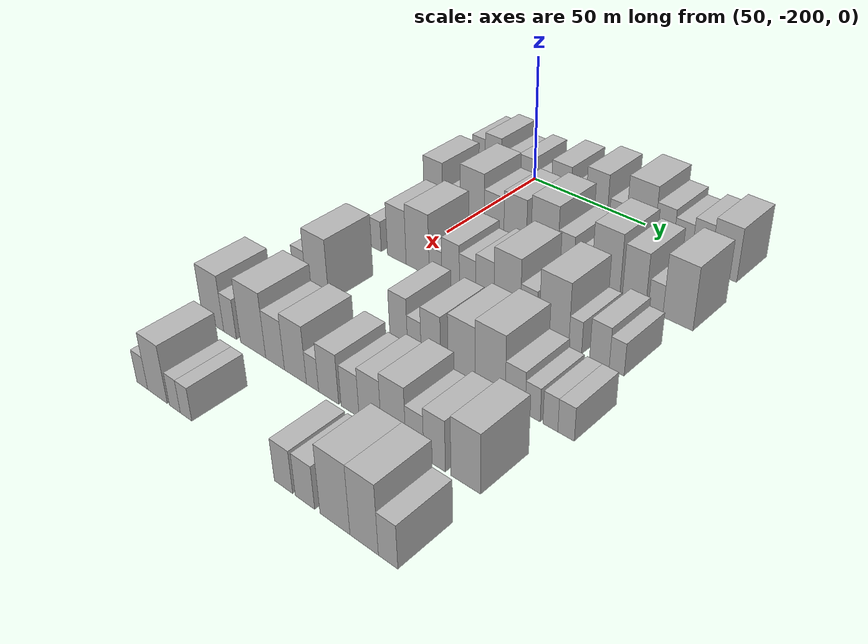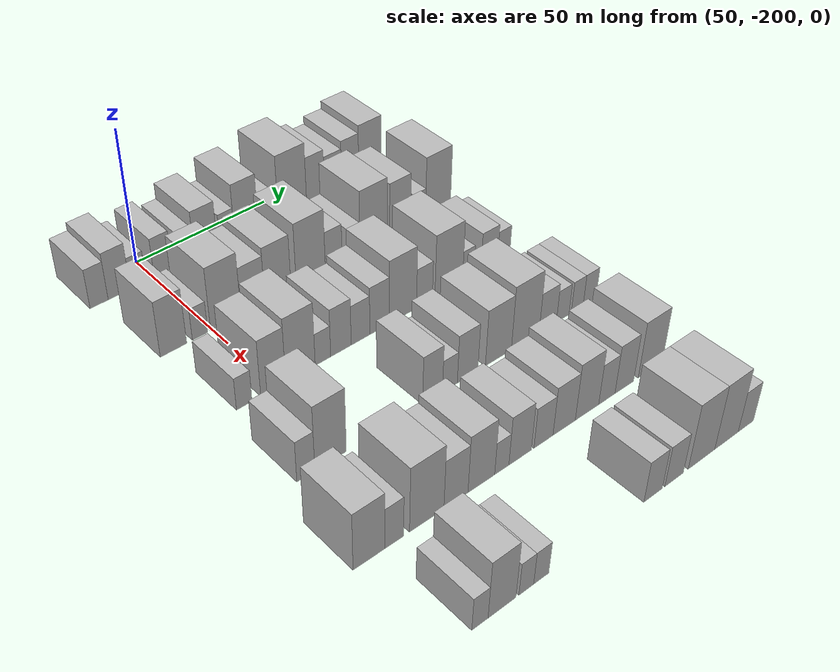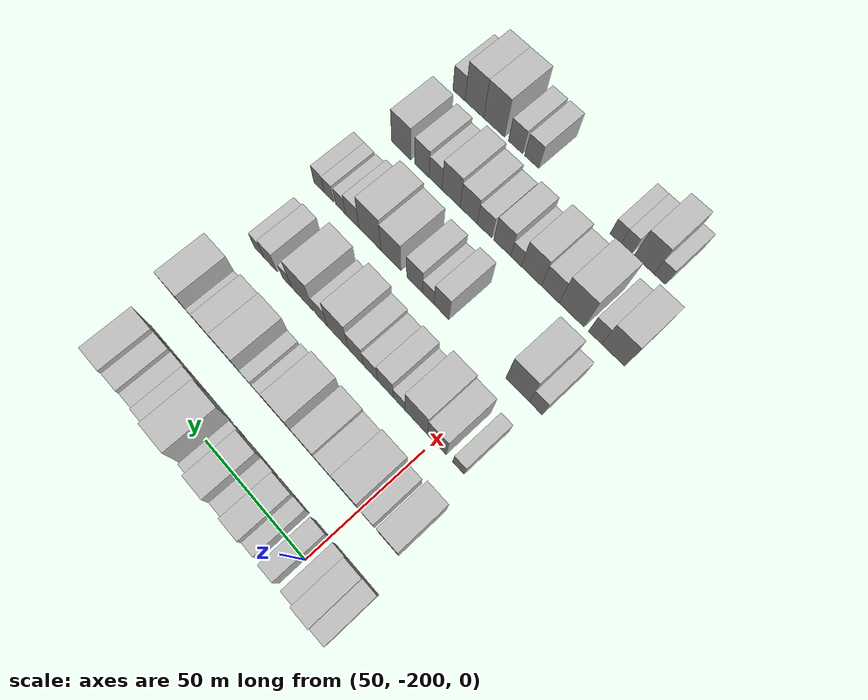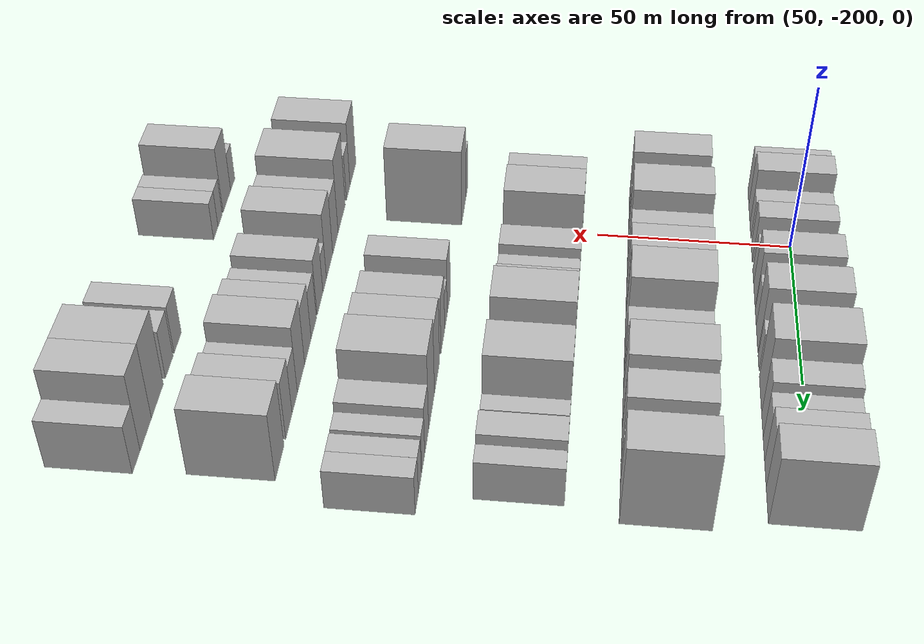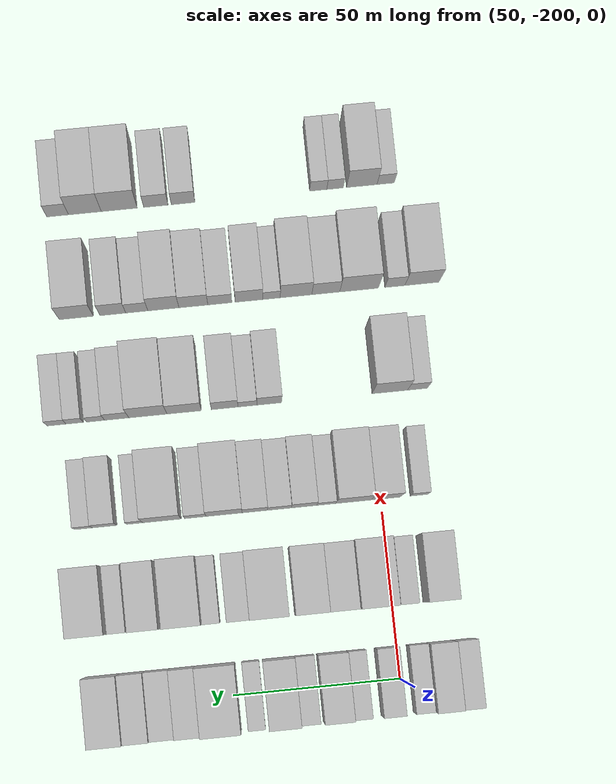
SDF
<sdf version="1.6">
 <world name="default">
  <model name="building_39">
   <static>1</static>
   <pose>50.0000 -219.6651 0 0.000000 0.000000 0.000000</pose>
   <link name="link">
    <pose>0 0 7.50 0 0 0</pose>
    <collision name="collision"><geometry><box><size>20.0000 6.3704 15.0000</size></box></geometry></collision>
    <visual name="visual">
     <cast_shadows>0</cast_shadows>
     <geometry><box><size>20.0000 6.3704 15.0000</size></box></geometry>
     <material>
      <script>
       <uri>model://HANNAS_wall/materials/scripts</uri>
       <uri>model://HANNAS_wall/materials/textures</uri>
       <name>vrc/HANNAS_wall</name>
      </script>
     </material>
    </visual>
   </link>
  </model>
  <model name="building_40">
   <static>1</static>
   <pose>50.0000 -212.5192 0 0.000000 0.000000 0.000000</pose>
   <link name="link">
    <pose>0 0 9.00 0 0 0</pose>
    <collision name="collision"><geometry><box><size>20.0000 7.9213 18.0000</size></box></geometry></collision>
    <visual name="visual">
     <cast_shadows>0</cast_shadows>
     <geometry><box><size>20.0000 7.9213 18.0000</size></box></geometry>
     <material>
      <script>
       <uri>model://HANNAS_wall/materials/scripts</uri>
       <uri>model://HANNAS_wall/materials/textures</uri>
       <name>vrc/HANNAS_wall</name>
      </script>
     </material>
    </visual>
   </link>
  </model>
  <model name="building_41">
   <static>1</static>
   <pose>50.0000 -205.6882 0 0.000000 0.000000 0.000000</pose>
   <link name="link">
    <pose>0 0 6.00 0 0 0</pose>
    <collision name="collision"><geometry><box><size>20.0000 5.7407 12.0000</size></box></geometry></collision>
    <visual name="visual">
     <cast_shadows>0</cast_shadows>
     <geometry><box><size>20.0000 5.7407 12.0000</size></box></geometry>
     <material>
      <script>
       <uri>model://HANNAS_wall/materials/scripts</uri>
       <uri>model://HANNAS_wall/materials/textures</uri>
       <name>vrc/HANNAS_wall</name>
      </script>
     </material>
    </visual>
   </link>
  </model>
  <model name="building_42">
   <static>1</static>
   <pose>50.0000 -196.4904 0 0.000000 0.000000 0.000000</pose>
   <link name="link">
    <pose>0 0 7.50 0 0 0</pose>
    <collision name="collision"><geometry><box><size>20.0000 6.6550 15.0000</size></box></geometry></collision>
    <visual name="visual">
     <cast_shadows>0</cast_shadows>
     <geometry><box><size>20.0000 6.6550 15.0000</size></box></geometry>
     <material>
      <script>
       <uri>model://HANNAS_wall/materials/scripts</uri>
       <uri>model://HANNAS_wall/materials/textures</uri>
       <name>vrc/HANNAS_wall</name>
      </script>
     </material>
    </visual>
   </link>
  </model>
  <model name="building_43">
   <static>1</static>
   <pose>50.0000 -187.4325 0 0.000000 0.000000 0.000000</pose>
   <link name="link">
    <pose>0 0 6.00 0 0 0</pose>
    <collision name="collision"><geometry><box><size>20.0000 5.4609 12.0000</size></box></geometry></collision>
    <visual name="visual">
     <cast_shadows>0</cast_shadows>
     <geometry><box><size>20.0000 5.4609 12.0000</size></box></geometry>
     <material>
      <script>
       <uri>model://HANNAS_wall/materials/scripts</uri>
       <uri>model://HANNAS_wall/materials/textures</uri>
       <name>vrc/HANNAS_wall</name>
      </script>
     </material>
    </visual>
   </link>
  </model>
  <model name="building_44">
   <static>1</static>
   <pose>50.0000 -180.2885 0 0.000000 0.000000 0.000000</pose>
   <link name="link">
    <pose>0 0 9.00 0 0 0</pose>
    <collision name="collision"><geometry><box><size>20.0000 8.8270 18.0000</size></box></geometry></collision>
    <visual name="visual">
     <cast_shadows>0</cast_shadows>
     <geometry><box><size>20.0000 8.8270 18.0000</size></box></geometry>
     <material>
      <script>
       <uri>model://HANNAS_wall/materials/scripts</uri>
       <uri>model://HANNAS_wall/materials/textures</uri>
       <name>vrc/HANNAS_wall</name>
      </script>
     </material>
    </visual>
   </link>
  </model>
  <model name="building_45">
   <static>1</static>
   <pose>50.0000 -171.9831 0 0.000000 0.000000 0.000000</pose>
   <link name="link">
    <pose>0 0 6.00 0 0 0</pose>
    <collision name="collision"><geometry><box><size>20.0000 5.7838 12.0000</size></box></geometry></collision>
    <visual name="visual">
     <cast_shadows>0</cast_shadows>
     <geometry><box><size>20.0000 5.7838 12.0000</size></box></geometry>
     <material>
      <script>
       <uri>model://HANNAS_wall/materials/scripts</uri>
       <uri>model://HANNAS_wall/materials/textures</uri>
       <name>vrc/HANNAS_wall</name>
      </script>
     </material>
    </visual>
   </link>
  </model>
  <model name="building_46">
   <static>1</static>
   <pose>50.0000 -164.3789 0 0.000000 0.000000 0.000000</pose>
   <link name="link">
    <pose>0 0 10.50 0 0 0</pose>
    <collision name="collision"><geometry><box><size>20.0000 9.4247 21.0000</size></box></geometry></collision>
    <visual name="visual">
     <cast_shadows>0</cast_shadows>
     <geometry><box><size>20.0000 9.4247 21.0000</size></box></geometry>
     <material>
      <script>
       <uri>model://HANNAS_wall/materials/scripts</uri>
       <uri>model://HANNAS_wall/materials/textures</uri>
       <name>vrc/HANNAS_wall</name>
      </script>
     </material>
    </visual>
   </link>
  </model>
  <model name="building_47">
   <static>1</static>
   <pose>50.0000 -156.1041 0 0.000000 0.000000 0.000000</pose>
   <link name="link">
    <pose>0 0 6.00 0 0 0</pose>
    <collision name="collision"><geometry><box><size>20.0000 5.1247 12.0000</size></box></geometry></collision>
    <visual name="visual">
     <cast_shadows>0</cast_shadows>
     <geometry><box><size>20.0000 5.1247 12.0000</size></box></geometry>
     <material>
      <script>
       <uri>model://HANNAS_wall/materials/scripts</uri>
       <uri>model://HANNAS_wall/materials/textures</uri>
       <name>vrc/HANNAS_wall</name>
      </script>
     </material>
    </visual>
   </link>
  </model>
  <model name="building_48">
   <static>1</static>
   <pose>50.0000 -145.6208 0 0.000000 0.000000 0.000000</pose>
   <link name="link">
    <pose>0 0 12.00 0 0 0</pose>
    <collision name="collision"><geometry><box><size>20.0000 11.8420 24.0000</size></box></geometry></collision>
    <visual name="visual">
     <cast_shadows>0</cast_shadows>
     <geometry><box><size>20.0000 11.8420 24.0000</size></box></geometry>
     <material>
      <script>
       <uri>model://HANNAS_wall/materials/scripts</uri>
       <uri>model://HANNAS_wall/materials/textures</uri>
       <name>vrc/HANNAS_wall</name>
      </script>
     </material>
    </visual>
   </link>
  </model>
  <model name="building_49">
   <static>1</static>
   <pose>50.0000 -135.8851 0 0.000000 0.000000 0.000000</pose>
   <link name="link">
    <pose>0 0 9.00 0 0 0</pose>
    <collision name="collision"><geometry><box><size>20.0000 7.6292 18.0000</size></box></geometry></collision>
    <visual name="visual">
     <cast_shadows>0</cast_shadows>
     <geometry><box><size>20.0000 7.6292 18.0000</size></box></geometry>
     <material>
      <script>
       <uri>model://HANNAS_wall/materials/scripts</uri>
       <uri>model://HANNAS_wall/materials/textures</uri>
       <name>vrc/HANNAS_wall</name>
      </script>
     </material>
    </visual>
   </link>
  </model>
  <model name="building_50">
   <static>1</static>
   <pose>50.0000 -128.3666 0 0.000000 0.000000 0.000000</pose>
   <link name="link">
    <pose>0 0 7.50 0 0 0</pose>
    <collision name="collision"><geometry><box><size>20.0000 7.4078 15.0000</size></box></geometry></collision>
    <visual name="visual">
     <cast_shadows>0</cast_shadows>
     <geometry><box><size>20.0000 7.4078 15.0000</size></box></geometry>
     <material>
      <script>
       <uri>model://HANNAS_wall/materials/scripts</uri>
       <uri>model://HANNAS_wall/materials/textures</uri>
       <name>vrc/HANNAS_wall</name>
      </script>
     </material>
    </visual>
   </link>
  </model>
  <model name="building_51">
   <static>1</static>
   <pose>50.0000 -120.8932 0 0.000000 0.000000 0.000000</pose>
   <link name="link">
    <pose>0 0 9.00 0 0 0</pose>
    <collision name="collision"><geometry><box><size>20.0000 7.5390 18.0000</size></box></geometry></collision>
    <visual name="visual">
     <cast_shadows>0</cast_shadows>
     <geometry><box><size>20.0000 7.5390 18.0000</size></box></geometry>
     <material>
      <script>
       <uri>model://HANNAS_wall/materials/scripts</uri>
       <uri>model://HANNAS_wall/materials/textures</uri>
       <name>vrc/HANNAS_wall</name>
      </script>
     </material>
    </visual>
   </link>
  </model>
  <model name="building_52">
   <static>1</static>
   <pose>50.0000 -112.0678 0 0.000000 0.000000 0.000000</pose>
   <link name="link">
    <pose>0 0 10.50 0 0 0</pose>
    <collision name="collision"><geometry><box><size>20.0000 10.1117 21.0000</size></box></geometry></collision>
    <visual name="visual">
     <cast_shadows>0</cast_shadows>
     <geometry><box><size>20.0000 10.1117 21.0000</size></box></geometry>
     <material>
      <script>
       <uri>model://HANNAS_wall/materials/scripts</uri>
       <uri>model://HANNAS_wall/materials/textures</uri>
       <name>vrc/HANNAS_wall</name>
      </script>
     </material>
    </visual>
   </link>
  </model>
  <model name="building_163">
   <static>1</static>
   <pose>82.0000 -213.8480 0 0.000000 0.000000 0.000000</pose>
   <link name="link">
    <pose>0 0 10.50 0 0 0</pose>
    <collision name="collision"><geometry><box><size>20.0000 9.2353 21.0000</size></box></geometry></collision>
    <visual name="visual">
     <cast_shadows>0</cast_shadows>
     <geometry><box><size>20.0000 9.2353 21.0000</size></box></geometry>
     <material>
      <script>
       <uri>model://HANNAS_wall/materials/scripts</uri>
       <uri>model://HANNAS_wall/materials/textures</uri>
       <name>vrc/HANNAS_wall</name>
      </script>
     </material>
    </visual>
   </link>
  </model>
  <model name="building_164">
   <static>1</static>
   <pose>82.0000 -204.4668 0 0.000000 0.000000 0.000000</pose>
   <link name="link">
    <pose>0 0 6.00 0 0 0</pose>
    <collision name="collision"><geometry><box><size>20.0000 5.5270 12.0000</size></box></geometry></collision>
    <visual name="visual">
     <cast_shadows>0</cast_shadows>
     <geometry><box><size>20.0000 5.5270 12.0000</size></box></geometry>
     <material>
      <script>
       <uri>model://HANNAS_wall/materials/scripts</uri>
       <uri>model://HANNAS_wall/materials/textures</uri>
       <name>vrc/HANNAS_wall</name>
      </script>
     </material>
    </visual>
   </link>
  </model>
  <model name="building_165">
   <static>1</static>
   <pose>82.0000 -195.1343 0 0.000000 0.000000 0.000000</pose>
   <link name="link">
    <pose>0 0 12.00 0 0 0</pose>
    <collision name="collision"><geometry><box><size>20.0000 11.1380 24.0000</size></box></geometry></collision>
    <visual name="visual">
     <cast_shadows>0</cast_shadows>
     <geometry><box><size>20.0000 11.1380 24.0000</size></box></geometry>
     <material>
      <script>
       <uri>model://HANNAS_wall/materials/scripts</uri>
       <uri>model://HANNAS_wall/materials/textures</uri>
       <name>vrc/HANNAS_wall</name>
      </script>
     </material>
    </visual>
   </link>
  </model>
  <model name="building_166">
   <static>1</static>
   <pose>82.0000 -185.1039 0 0.000000 0.000000 0.000000</pose>
   <link name="link">
    <pose>0 0 9.00 0 0 0</pose>
    <collision name="collision"><geometry><box><size>20.0000 8.9227 18.0000</size></box></geometry></collision>
    <visual name="visual">
     <cast_shadows>0</cast_shadows>
     <geometry><box><size>20.0000 8.9227 18.0000</size></box></geometry>
     <material>
      <script>
       <uri>model://HANNAS_wall/materials/scripts</uri>
       <uri>model://HANNAS_wall/materials/textures</uri>
       <name>vrc/HANNAS_wall</name>
      </script>
     </material>
    </visual>
   </link>
  </model>
  <model name="building_167">
   <static>1</static>
   <pose>82.0000 -175.6347 0 0.000000 0.000000 0.000000</pose>
   <link name="link">
    <pose>0 0 10.50 0 0 0</pose>
    <collision name="collision"><geometry><box><size>20.0000 10.0158 21.0000</size></box></geometry></collision>
    <visual name="visual">
     <cast_shadows>0</cast_shadows>
     <geometry><box><size>20.0000 10.0158 21.0000</size></box></geometry>
     <material>
      <script>
       <uri>model://HANNAS_wall/materials/scripts</uri>
       <uri>model://HANNAS_wall/materials/textures</uri>
       <name>vrc/HANNAS_wall</name>
      </script>
     </material>
    </visual>
   </link>
  </model>
  <model name="building_168">
   <static>1</static>
   <pose>82.0000 -162.8648 0 0.000000 0.000000 0.000000</pose>
   <link name="link">
    <pose>0 0 12.00 0 0 0</pose>
    <collision name="collision"><geometry><box><size>20.0000 11.5240 24.0000</size></box></geometry></collision>
    <visual name="visual">
     <cast_shadows>0</cast_shadows>
     <geometry><box><size>20.0000 11.5240 24.0000</size></box></geometry>
     <material>
      <script>
       <uri>model://HANNAS_wall/materials/scripts</uri>
       <uri>model://HANNAS_wall/materials/textures</uri>
       <name>vrc/HANNAS_wall</name>
      </script>
     </material>
    </visual>
   </link>
  </model>
  <model name="building_169">
   <static>1</static>
   <pose>82.0000 -153.7207 0 0.000000 0.000000 0.000000</pose>
   <link name="link">
    <pose>0 0 7.50 0 0 0</pose>
    <collision name="collision"><geometry><box><size>20.0000 6.7641 15.0000</size></box></geometry></collision>
    <visual name="visual">
     <cast_shadows>0</cast_shadows>
     <geometry><box><size>20.0000 6.7641 15.0000</size></box></geometry>
     <material>
      <script>
       <uri>model://HANNAS_wall/materials/scripts</uri>
       <uri>model://HANNAS_wall/materials/textures</uri>
       <name>vrc/HANNAS_wall</name>
      </script>
     </material>
    </visual>
   </link>
  </model>
  <model name="building_170">
   <static>1</static>
   <pose>82.0000 -145.6865 0 0.000000 0.000000 0.000000</pose>
   <link name="link">
    <pose>0 0 6.00 0 0 0</pose>
    <collision name="collision"><geometry><box><size>20.0000 5.3043 12.0000</size></box></geometry></collision>
    <visual name="visual">
     <cast_shadows>0</cast_shadows>
     <geometry><box><size>20.0000 5.3043 12.0000</size></box></geometry>
     <material>
      <script>
       <uri>model://HANNAS_wall/materials/scripts</uri>
       <uri>model://HANNAS_wall/materials/textures</uri>
       <name>vrc/HANNAS_wall</name>
      </script>
     </material>
    </visual>
   </link>
  </model>
  <model name="building_171">
   <static>1</static>
   <pose>82.0000 -137.3369 0 0.000000 0.000000 0.000000</pose>
   <link name="link">
    <pose>0 0 12.00 0 0 0</pose>
    <collision name="collision"><geometry><box><size>20.0000 11.3950 24.0000</size></box></geometry></collision>
    <visual name="visual">
     <cast_shadows>0</cast_shadows>
     <geometry><box><size>20.0000 11.3950 24.0000</size></box></geometry>
     <material>
      <script>
       <uri>model://HANNAS_wall/materials/scripts</uri>
       <uri>model://HANNAS_wall/materials/textures</uri>
       <name>vrc/HANNAS_wall</name>
      </script>
     </material>
    </visual>
   </link>
  </model>
  <model name="building_172">
   <static>1</static>
   <pose>82.0000 -126.1209 0 0.000000 0.000000 0.000000</pose>
   <link name="link">
    <pose>0 0 10.50 0 0 0</pose>
    <collision name="collision"><geometry><box><size>20.0000 9.0370 21.0000</size></box></geometry></collision>
    <visual name="visual">
     <cast_shadows>0</cast_shadows>
     <geometry><box><size>20.0000 9.0370 21.0000</size></box></geometry>
     <material>
      <script>
       <uri>model://HANNAS_wall/materials/scripts</uri>
       <uri>model://HANNAS_wall/materials/textures</uri>
       <name>vrc/HANNAS_wall</name>
      </script>
     </material>
    </visual>
   </link>
  </model>
  <model name="building_173">
   <static>1</static>
   <pose>82.0000 -117.8494 0 0.000000 0.000000 0.000000</pose>
   <link name="link">
    <pose>0 0 6.00 0 0 0</pose>
    <collision name="collision"><geometry><box><size>20.0000 5.5059 12.0000</size></box></geometry></collision>
    <visual name="visual">
     <cast_shadows>0</cast_shadows>
     <geometry><box><size>20.0000 5.5059 12.0000</size></box></geometry>
     <material>
      <script>
       <uri>model://HANNAS_wall/materials/scripts</uri>
       <uri>model://HANNAS_wall/materials/textures</uri>
       <name>vrc/HANNAS_wall</name>
      </script>
     </material>
    </visual>
   </link>
  </model>
  <model name="building_174">
   <static>1</static>
   <pose>82.0000 -109.5113 0 0.000000 0.000000 0.000000</pose>
   <link name="link">
    <pose>0 0 12.00 0 0 0</pose>
    <collision name="collision"><geometry><box><size>20.0000 11.1703 24.0000</size></box></geometry></collision>
    <visual name="visual">
     <cast_shadows>0</cast_shadows>
     <geometry><box><size>20.0000 11.1703 24.0000</size></box></geometry>
     <material>
      <script>
       <uri>model://HANNAS_wall/materials/scripts</uri>
       <uri>model://HANNAS_wall/materials/textures</uri>
       <name>vrc/HANNAS_wall</name>
      </script>
     </material>
    </visual>
   </link>
  </model>
  <model name="building_277">
   <static>1</static>
   <pose>114.0000 -211.4672 0 0.000000 0.000000 0.000000</pose>
   <link name="link">
    <pose>0 0 6.00 0 0 0</pose>
    <collision name="collision"><geometry><box><size>20.0000 5.3810 12.0000</size></box></geometry></collision>
    <visual name="visual">
     <cast_shadows>0</cast_shadows>
     <geometry><box><size>20.0000 5.3810 12.0000</size></box></geometry>
     <material>
      <script>
       <uri>model://HANNAS_wall/materials/scripts</uri>
       <uri>model://HANNAS_wall/materials/textures</uri>
       <name>vrc/HANNAS_wall</name>
      </script>
     </material>
    </visual>
   </link>
  </model>
  <model name="building_278">
   <static>1</static>
   <pose>114.0000 -201.3523 0 0.000000 0.000000 0.000000</pose>
   <link name="link">
    <pose>0 0 10.50 0 0 0</pose>
    <collision name="collision"><geometry><box><size>20.0000 8.8488 21.0000</size></box></geometry></collision>
    <visual name="visual">
     <cast_shadows>0</cast_shadows>
     <geometry><box><size>20.0000 8.8488 21.0000</size></box></geometry>
     <material>
      <script>
       <uri>model://HANNAS_wall/materials/scripts</uri>
       <uri>model://HANNAS_wall/materials/textures</uri>
       <name>vrc/HANNAS_wall</name>
      </script>
     </material>
    </visual>
   </link>
  </model>
  <model name="building_279">
   <static>1</static>
   <pose>114.0000 -191.5979 0 0.000000 0.000000 0.000000</pose>
   <link name="link">
    <pose>0 0 12.00 0 0 0</pose>
    <collision name="collision"><geometry><box><size>20.0000 10.6601 24.0000</size></box></geometry></collision>
    <visual name="visual">
     <cast_shadows>0</cast_shadows>
     <geometry><box><size>20.0000 10.6601 24.0000</size></box></geometry>
     <material>
      <script>
       <uri>model://HANNAS_wall/materials/scripts</uri>
       <uri>model://HANNAS_wall/materials/textures</uri>
       <name>vrc/HANNAS_wall</name>
      </script>
     </material>
    </visual>
   </link>
  </model>
  <model name="building_280">
   <static>1</static>
   <pose>114.0000 -183.3990 0 0.000000 0.000000 0.000000</pose>
   <link name="link">
    <pose>0 0 6.00 0 0 0</pose>
    <collision name="collision"><geometry><box><size>20.0000 5.7376 12.0000</size></box></geometry></collision>
    <visual name="visual">
     <cast_shadows>0</cast_shadows>
     <geometry><box><size>20.0000 5.7376 12.0000</size></box></geometry>
     <material>
      <script>
       <uri>model://HANNAS_wall/materials/scripts</uri>
       <uri>model://HANNAS_wall/materials/textures</uri>
       <name>vrc/HANNAS_wall</name>
      </script>
     </material>
    </visual>
   </link>
  </model>
  <model name="building_281">
   <static>1</static>
   <pose>114.0000 -176.6752 0 0.000000 0.000000 0.000000</pose>
   <link name="link">
    <pose>0 0 9.00 0 0 0</pose>
    <collision name="collision"><geometry><box><size>20.0000 7.7099 18.0000</size></box></geometry></collision>
    <visual name="visual">
     <cast_shadows>0</cast_shadows>
     <geometry><box><size>20.0000 7.7099 18.0000</size></box></geometry>
     <material>
      <script>
       <uri>model://HANNAS_wall/materials/scripts</uri>
       <uri>model://HANNAS_wall/materials/textures</uri>
       <name>vrc/HANNAS_wall</name>
      </script>
     </material>
    </visual>
   </link>
  </model>
  <model name="building_282">
   <static>1</static>
   <pose>114.0000 -169.2463 0 0.000000 0.000000 0.000000</pose>
   <link name="link">
    <pose>0 0 7.50 0 0 0</pose>
    <collision name="collision"><geometry><box><size>20.0000 7.1480 15.0000</size></box></geometry></collision>
    <visual name="visual">
     <cast_shadows>0</cast_shadows>
     <geometry><box><size>20.0000 7.1480 15.0000</size></box></geometry>
     <material>
      <script>
       <uri>model://HANNAS_wall/materials/scripts</uri>
       <uri>model://HANNAS_wall/materials/textures</uri>
       <name>vrc/HANNAS_wall</name>
      </script>
     </material>
    </visual>
   </link>
  </model>
  <model name="building_283">
   <static>1</static>
   <pose>114.0000 -161.8572 0 0.000000 0.000000 0.000000</pose>
   <link name="link">
    <pose>0 0 9.00 0 0 0</pose>
    <collision name="collision"><geometry><box><size>20.0000 7.6302 18.0000</size></box></geometry></collision>
    <visual name="visual">
     <cast_shadows>0</cast_shadows>
     <geometry><box><size>20.0000 7.6302 18.0000</size></box></geometry>
     <material>
      <script>
       <uri>model://HANNAS_wall/materials/scripts</uri>
       <uri>model://HANNAS_wall/materials/textures</uri>
       <name>vrc/HANNAS_wall</name>
      </script>
     </material>
    </visual>
   </link>
  </model>
  <model name="building_284">
   <static>1</static>
   <pose>114.0000 -152.6305 0 0.000000 0.000000 0.000000</pose>
   <link name="link">
    <pose>0 0 12.00 0 0 0</pose>
    <collision name="collision"><geometry><box><size>20.0000 10.8233 24.0000</size></box></geometry></collision>
    <visual name="visual">
     <cast_shadows>0</cast_shadows>
     <geometry><box><size>20.0000 10.8233 24.0000</size></box></geometry>
     <material>
      <script>
       <uri>model://HANNAS_wall/materials/scripts</uri>
       <uri>model://HANNAS_wall/materials/textures</uri>
       <name>vrc/HANNAS_wall</name>
      </script>
     </material>
    </visual>
   </link>
  </model>
  <model name="building_285">
   <static>1</static>
   <pose>114.0000 -143.9713 0 0.000000 0.000000 0.000000</pose>
   <link name="link">
    <pose>0 0 7.50 0 0 0</pose>
    <collision name="collision"><geometry><box><size>20.0000 6.4950 15.0000</size></box></geometry></collision>
    <visual name="visual">
     <cast_shadows>0</cast_shadows>
     <geometry><box><size>20.0000 6.4950 15.0000</size></box></geometry>
     <material>
      <script>
       <uri>model://HANNAS_wall/materials/scripts</uri>
       <uri>model://HANNAS_wall/materials/textures</uri>
       <name>vrc/HANNAS_wall</name>
      </script>
     </material>
    </visual>
   </link>
  </model>
  <model name="building_286">
   <static>1</static>
   <pose>114.0000 -133.9460 0 0.000000 0.000000 0.000000</pose>
   <link name="link">
    <pose>0 0 12.00 0 0 0</pose>
    <collision name="collision"><geometry><box><size>20.0000 11.5556 24.0000</size></box></geometry></collision>
    <visual name="visual">
     <cast_shadows>0</cast_shadows>
     <geometry><box><size>20.0000 11.5556 24.0000</size></box></geometry>
     <material>
      <script>
       <uri>model://HANNAS_wall/materials/scripts</uri>
       <uri>model://HANNAS_wall/materials/textures</uri>
       <name>vrc/HANNAS_wall</name>
      </script>
     </material>
    </visual>
   </link>
  </model>
  <model name="building_287">
   <static>1</static>
   <pose>114.0000 -125.7355 0 0.000000 0.000000 0.000000</pose>
   <link name="link">
    <pose>0 0 6.00 0 0 0</pose>
    <collision name="collision"><geometry><box><size>20.0000 4.8654 12.0000</size></box></geometry></collision>
    <visual name="visual">
     <cast_shadows>0</cast_shadows>
     <geometry><box><size>20.0000 4.8654 12.0000</size></box></geometry>
     <material>
      <script>
       <uri>model://HANNAS_wall/materials/scripts</uri>
       <uri>model://HANNAS_wall/materials/textures</uri>
       <name>vrc/HANNAS_wall</name>
      </script>
     </material>
    </visual>
   </link>
  </model>
  <model name="building_288">
   <static>1</static>
   <pose>114.0000 -116.6939 0 0.000000 0.000000 0.000000</pose>
   <link name="link">
    <pose>0 0 7.50 0 0 0</pose>
    <collision name="collision"><geometry><box><size>20.0000 7.2179 15.0000</size></box></geometry></collision>
    <visual name="visual">
     <cast_shadows>0</cast_shadows>
     <geometry><box><size>20.0000 7.2179 15.0000</size></box></geometry>
     <material>
      <script>
       <uri>model://HANNAS_wall/materials/scripts</uri>
       <uri>model://HANNAS_wall/materials/textures</uri>
       <name>vrc/HANNAS_wall</name>
      </script>
     </material>
    </visual>
   </link>
  </model>
  <model name="building_289">
   <static>1</static>
   <pose>114.0000 -110.3824 0 0.000000 0.000000 0.000000</pose>
   <link name="link">
    <pose>0 0 6.00 0 0 0</pose>
    <collision name="collision"><geometry><box><size>20.0000 5.4051 12.0000</size></box></geometry></collision>
    <visual name="visual">
     <cast_shadows>0</cast_shadows>
     <geometry><box><size>20.0000 5.4051 12.0000</size></box></geometry>
     <material>
      <script>
       <uri>model://HANNAS_wall/materials/scripts</uri>
       <uri>model://HANNAS_wall/materials/textures</uri>
       <name>vrc/HANNAS_wall</name>
      </script>
     </material>
    </visual>
   </link>
  </model>
  <model name="building_399">
   <static>1</static>
   <pose>146.0000 -214.5047 0 0.000000 0.000000 0.000000</pose>
   <link name="link">
    <pose>0 0 7.50 0 0 0</pose>
    <collision name="collision"><geometry><box><size>20.0000 6.0392 15.0000</size></box></geometry></collision>
    <visual name="visual">
     <cast_shadows>0</cast_shadows>
     <geometry><box><size>20.0000 6.0392 15.0000</size></box></geometry>
     <material>
      <script>
       <uri>model://HANNAS_wall/materials/scripts</uri>
       <uri>model://HANNAS_wall/materials/textures</uri>
       <name>vrc/HANNAS_wall</name>
      </script>
     </material>
    </visual>
   </link>
  </model>
  <model name="building_400">
   <static>1</static>
   <pose>146.0000 -206.0844 0 0.000000 0.000000 0.000000</pose>
   <link name="link">
    <pose>0 0 12.00 0 0 0</pose>
    <collision name="collision"><geometry><box><size>20.0000 10.8015 24.0000</size></box></geometry></collision>
    <visual name="visual">
     <cast_shadows>0</cast_shadows>
     <geometry><box><size>20.0000 10.8015 24.0000</size></box></geometry>
     <material>
      <script>
       <uri>model://HANNAS_wall/materials/scripts</uri>
       <uri>model://HANNAS_wall/materials/textures</uri>
       <name>vrc/HANNAS_wall</name>
      </script>
     </material>
    </visual>
   </link>
  </model>
  <model name="building_401">
   <static>1</static>
   <pose>146.0000 -169.4011 0 0.000000 0.000000 0.000000</pose>
   <link name="link">
    <pose>0 0 9.00 0 0 0</pose>
    <collision name="collision"><geometry><box><size>20.0000 7.5217 18.0000</size></box></geometry></collision>
    <visual name="visual">
     <cast_shadows>0</cast_shadows>
     <geometry><box><size>20.0000 7.5217 18.0000</size></box></geometry>
     <material>
      <script>
       <uri>model://HANNAS_wall/materials/scripts</uri>
       <uri>model://HANNAS_wall/materials/textures</uri>
       <name>vrc/HANNAS_wall</name>
      </script>
     </material>
    </visual>
   </link>
  </model>
  <model name="building_402">
   <static>1</static>
   <pose>146.0000 -162.7787 0 0.000000 0.000000 0.000000</pose>
   <link name="link">
    <pose>0 0 6.00 0 0 0</pose>
    <collision name="collision"><geometry><box><size>20.0000 5.7232 12.0000</size></box></geometry></collision>
    <visual name="visual">
     <cast_shadows>0</cast_shadows>
     <geometry><box><size>20.0000 5.7232 12.0000</size></box></geometry>
     <material>
      <script>
       <uri>model://HANNAS_wall/materials/scripts</uri>
       <uri>model://HANNAS_wall/materials/textures</uri>
       <name>vrc/HANNAS_wall</name>
      </script>
     </material>
    </visual>
   </link>
  </model>
  <model name="building_403">
   <static>1</static>
   <pose>146.0000 -155.8936 0 0.000000 0.000000 0.000000</pose>
   <link name="link">
    <pose>0 0 9.00 0 0 0</pose>
    <collision name="collision"><geometry><box><size>20.0000 8.0471 18.0000</size></box></geometry></collision>
    <visual name="visual">
     <cast_shadows>0</cast_shadows>
     <geometry><box><size>20.0000 8.0471 18.0000</size></box></geometry>
     <material>
      <script>
       <uri>model://HANNAS_wall/materials/scripts</uri>
       <uri>model://HANNAS_wall/materials/textures</uri>
       <name>vrc/HANNAS_wall</name>
      </script>
     </material>
    </visual>
   </link>
  </model>
  <model name="building_404">
   <static>1</static>
   <pose>146.0000 -143.6290 0 0.000000 0.000000 0.000000</pose>
   <link name="link">
    <pose>0 0 10.50 0 0 0</pose>
    <collision name="collision"><geometry><box><size>20.0000 10.4821 21.0000</size></box></geometry></collision>
    <visual name="visual">
     <cast_shadows>0</cast_shadows>
     <geometry><box><size>20.0000 10.4821 21.0000</size></box></geometry>
     <material>
      <script>
       <uri>model://HANNAS_wall/materials/scripts</uri>
       <uri>model://HANNAS_wall/materials/textures</uri>
       <name>vrc/HANNAS_wall</name>
      </script>
     </material>
    </visual>
   </link>
  </model>
  <model name="building_405">
   <static>1</static>
   <pose>146.0000 -132.6095 0 0.000000 0.000000 0.000000</pose>
   <link name="link">
    <pose>0 0 12.00 0 0 0</pose>
    <collision name="collision"><geometry><box><size>20.0000 11.5568 24.0000</size></box></geometry></collision>
    <visual name="visual">
     <cast_shadows>0</cast_shadows>
     <geometry><box><size>20.0000 11.5568 24.0000</size></box></geometry>
     <material>
      <script>
       <uri>model://HANNAS_wall/materials/scripts</uri>
       <uri>model://HANNAS_wall/materials/textures</uri>
       <name>vrc/HANNAS_wall</name>
      </script>
     </material>
    </visual>
   </link>
  </model>
  <model name="building_406">
   <static>1</static>
   <pose>146.0000 -123.1488 0 0.000000 0.000000 0.000000</pose>
   <link name="link">
    <pose>0 0 7.50 0 0 0</pose>
    <collision name="collision"><geometry><box><size>20.0000 7.3646 15.0000</size></box></geometry></collision>
    <visual name="visual">
     <cast_shadows>0</cast_shadows>
     <geometry><box><size>20.0000 7.3646 15.0000</size></box></geometry>
     <material>
      <script>
       <uri>model://HANNAS_wall/materials/scripts</uri>
       <uri>model://HANNAS_wall/materials/textures</uri>
       <name>vrc/HANNAS_wall</name>
      </script>
     </material>
    </visual>
   </link>
  </model>
  <model name="building_407">
   <static>1</static>
   <pose>146.0000 -116.7662 0 0.000000 0.000000 0.000000</pose>
   <link name="link">
    <pose>0 0 6.00 0 0 0</pose>
    <collision name="collision"><geometry><box><size>20.0000 5.4006 12.0000</size></box></geometry></collision>
    <visual name="visual">
     <cast_shadows>0</cast_shadows>
     <geometry><box><size>20.0000 5.4006 12.0000</size></box></geometry>
     <material>
      <script>
       <uri>model://HANNAS_wall/materials/scripts</uri>
       <uri>model://HANNAS_wall/materials/textures</uri>
       <name>vrc/HANNAS_wall</name>
      </script>
     </material>
    </visual>
   </link>
  </model>
  <model name="building_408">
   <static>1</static>
   <pose>146.0000 -110.4447 0 0.000000 0.000000 0.000000</pose>
   <link name="link">
    <pose>0 0 6.00 0 0 0</pose>
    <collision name="collision"><geometry><box><size>20.0000 5.2424 12.0000</size></box></geometry></collision>
    <visual name="visual">
     <cast_shadows>0</cast_shadows>
     <geometry><box><size>20.0000 5.2424 12.0000</size></box></geometry>
     <material>
      <script>
       <uri>model://HANNAS_wall/materials/scripts</uri>
       <uri>model://HANNAS_wall/materials/textures</uri>
       <name>vrc/HANNAS_wall</name>
      </script>
     </material>
    </visual>
   </link>
  </model>
  <model name="building_409">
   <static>1</static>
   <pose>146.0000 -104.9486 0 0.000000 0.000000 0.000000</pose>
   <link name="link">
    <pose>0 0 6.00 0 0 0</pose>
    <collision name="collision"><geometry><box><size>20.0000 5.7497 12.0000</size></box></geometry></collision>
    <visual name="visual">
     <cast_shadows>0</cast_shadows>
     <geometry><box><size>20.0000 5.7497 12.0000</size></box></geometry>
     <material>
      <script>
       <uri>model://HANNAS_wall/materials/scripts</uri>
       <uri>model://HANNAS_wall/materials/textures</uri>
       <name>vrc/HANNAS_wall</name>
      </script>
     </material>
    </visual>
   </link>
  </model>
  <model name="building_517">
   <static>1</static>
   <pose>178.0000 -219.3640 0 0.000000 0.000000 0.000000</pose>
   <link name="link">
    <pose>0 0 10.50 0 0 0</pose>
    <collision name="collision"><geometry><box><size>20.0000 10.4464 21.0000</size></box></geometry></collision>
    <visual name="visual">
     <cast_shadows>0</cast_shadows>
     <geometry><box><size>20.0000 10.4464 21.0000</size></box></geometry>
     <material>
      <script>
       <uri>model://HANNAS_wall/materials/scripts</uri>
       <uri>model://HANNAS_wall/materials/textures</uri>
       <name>vrc/HANNAS_wall</name>
      </script>
     </material>
    </visual>
   </link>
  </model>
  <model name="building_518">
   <static>1</static>
   <pose>178.0000 -211.0780 0 0.000000 0.000000 0.000000</pose>
   <link name="link">
    <pose>0 0 7.50 0 0 0</pose>
    <collision name="collision"><geometry><box><size>20.0000 6.1256 15.0000</size></box></geometry></collision>
    <visual name="visual">
     <cast_shadows>0</cast_shadows>
     <geometry><box><size>20.0000 6.1256 15.0000</size></box></geometry>
     <material>
      <script>
       <uri>model://HANNAS_wall/materials/scripts</uri>
       <uri>model://HANNAS_wall/materials/textures</uri>
       <name>vrc/HANNAS_wall</name>
      </script>
     </material>
    </visual>
   </link>
  </model>
  <model name="building_519">
   <static>1</static>
   <pose>178.0000 -200.1076 0 0.000000 0.000000 0.000000</pose>
   <link name="link">
    <pose>0 0 12.00 0 0 0</pose>
    <collision name="collision"><geometry><box><size>20.0000 11.8153 24.0000</size></box></geometry></collision>
    <visual name="visual">
     <cast_shadows>0</cast_shadows>
     <geometry><box><size>20.0000 11.8153 24.0000</size></box></geometry>
     <material>
      <script>
       <uri>model://HANNAS_wall/materials/scripts</uri>
       <uri>model://HANNAS_wall/materials/textures</uri>
       <name>vrc/HANNAS_wall</name>
      </script>
     </material>
    </visual>
   </link>
  </model>
  <model name="building_520">
   <static>1</static>
   <pose>178.0000 -189.9324 0 0.000000 0.000000 0.000000</pose>
   <link name="link">
    <pose>0 0 9.00 0 0 0</pose>
    <collision name="collision"><geometry><box><size>20.0000 8.5349 18.0000</size></box></geometry></collision>
    <visual name="visual">
     <cast_shadows>0</cast_shadows>
     <geometry><box><size>20.0000 8.5349 18.0000</size></box></geometry>
     <material>
      <script>
       <uri>model://HANNAS_wall/materials/scripts</uri>
       <uri>model://HANNAS_wall/materials/textures</uri>
       <name>vrc/HANNAS_wall</name>
      </script>
     </material>
    </visual>
   </link>
  </model>
  <model name="building_521">
   <static>1</static>
   <pose>178.0000 -180.8206 0 0.000000 0.000000 0.000000</pose>
   <link name="link">
    <pose>0 0 10.50 0 0 0</pose>
    <collision name="collision"><geometry><box><size>20.0000 9.6887 21.0000</size></box></geometry></collision>
    <visual name="visual">
     <cast_shadows>0</cast_shadows>
     <geometry><box><size>20.0000 9.6887 21.0000</size></box></geometry>
     <material>
      <script>
       <uri>model://HANNAS_wall/materials/scripts</uri>
       <uri>model://HANNAS_wall/materials/textures</uri>
       <name>vrc/HANNAS_wall</name>
      </script>
     </material>
    </visual>
   </link>
  </model>
  <model name="building_522">
   <static>1</static>
   <pose>178.0000 -173.3384 0 0.000000 0.000000 0.000000</pose>
   <link name="link">
    <pose>0 0 6.00 0 0 0</pose>
    <collision name="collision"><geometry><box><size>20.0000 5.2757 12.0000</size></box></geometry></collision>
    <visual name="visual">
     <cast_shadows>0</cast_shadows>
     <geometry><box><size>20.0000 5.2757 12.0000</size></box></geometry>
     <material>
      <script>
       <uri>model://HANNAS_wall/materials/scripts</uri>
       <uri>model://HANNAS_wall/materials/textures</uri>
       <name>vrc/HANNAS_wall</name>
      </script>
     </material>
    </visual>
   </link>
  </model>
  <model name="building_523">
   <static>1</static>
   <pose>178.0000 -166.4733 0 0.000000 0.000000 0.000000</pose>
   <link name="link">
    <pose>0 0 9.00 0 0 0</pose>
    <collision name="collision"><geometry><box><size>20.0000 8.4544 18.0000</size></box></geometry></collision>
    <visual name="visual">
     <cast_shadows>0</cast_shadows>
     <geometry><box><size>20.0000 8.4544 18.0000</size></box></geometry>
     <material>
      <script>
       <uri>model://HANNAS_wall/materials/scripts</uri>
       <uri>model://HANNAS_wall/materials/textures</uri>
       <name>vrc/HANNAS_wall</name>
      </script>
     </material>
    </visual>
   </link>
  </model>
  <model name="building_524">
   <static>1</static>
   <pose>178.0000 -157.5679 0 0.000000 0.000000 0.000000</pose>
   <link name="link">
    <pose>0 0 7.50 0 0 0</pose>
    <collision name="collision"><geometry><box><size>20.0000 7.3565 15.0000</size></box></geometry></collision>
    <visual name="visual">
     <cast_shadows>0</cast_shadows>
     <geometry><box><size>20.0000 7.3565 15.0000</size></box></geometry>
     <material>
      <script>
       <uri>model://HANNAS_wall/materials/scripts</uri>
       <uri>model://HANNAS_wall/materials/textures</uri>
       <name>vrc/HANNAS_wall</name>
      </script>
     </material>
    </visual>
   </link>
  </model>
  <model name="building_525">
   <static>1</static>
   <pose>178.0000 -149.4798 0 0.000000 0.000000 0.000000</pose>
   <link name="link">
    <pose>0 0 9.00 0 0 0</pose>
    <collision name="collision"><geometry><box><size>20.0000 8.8197 18.0000</size></box></geometry></collision>
    <visual name="visual">
     <cast_shadows>0</cast_shadows>
     <geometry><box><size>20.0000 8.8197 18.0000</size></box></geometry>
     <material>
      <script>
       <uri>model://HANNAS_wall/materials/scripts</uri>
       <uri>model://HANNAS_wall/materials/textures</uri>
       <name>vrc/HANNAS_wall</name>
      </script>
     </material>
    </visual>
   </link>
  </model>
  <model name="building_526">
   <static>1</static>
   <pose>178.0000 -140.3275 0 0.000000 0.000000 0.000000</pose>
   <link name="link">
    <pose>0 0 10.50 0 0 0</pose>
    <collision name="collision"><geometry><box><size>20.0000 9.4850 21.0000</size></box></geometry></collision>
    <visual name="visual">
     <cast_shadows>0</cast_shadows>
     <geometry><box><size>20.0000 9.4850 21.0000</size></box></geometry>
     <material>
      <script>
       <uri>model://HANNAS_wall/materials/scripts</uri>
       <uri>model://HANNAS_wall/materials/textures</uri>
       <name>vrc/HANNAS_wall</name>
      </script>
     </material>
    </visual>
   </link>
  </model>
  <model name="building_527">
   <static>1</static>
   <pose>178.0000 -132.2185 0 0.000000 0.000000 0.000000</pose>
   <link name="link">
    <pose>0 0 7.50 0 0 0</pose>
    <collision name="collision"><geometry><box><size>20.0000 6.7330 15.0000</size></box></geometry></collision>
    <visual name="visual">
     <cast_shadows>0</cast_shadows>
     <geometry><box><size>20.0000 6.7330 15.0000</size></box></geometry>
     <material>
      <script>
       <uri>model://HANNAS_wall/materials/scripts</uri>
       <uri>model://HANNAS_wall/materials/textures</uri>
       <name>vrc/HANNAS_wall</name>
      </script>
     </material>
    </visual>
   </link>
  </model>
  <model name="building_528">
   <static>1</static>
   <pose>178.0000 -124.9215 0 0.000000 0.000000 0.000000</pose>
   <link name="link">
    <pose>0 0 9.00 0 0 0</pose>
    <collision name="collision"><geometry><box><size>20.0000 7.8610 18.0000</size></box></geometry></collision>
    <visual name="visual">
     <cast_shadows>0</cast_shadows>
     <geometry><box><size>20.0000 7.8610 18.0000</size></box></geometry>
     <material>
      <script>
       <uri>model://HANNAS_wall/materials/scripts</uri>
       <uri>model://HANNAS_wall/materials/textures</uri>
       <name>vrc/HANNAS_wall</name>
      </script>
     </material>
    </visual>
   </link>
  </model>
  <model name="building_529">
   <static>1</static>
   <pose>178.0000 -113.7715 0 0.000000 0.000000 0.000000</pose>
   <link name="link">
    <pose>0 0 10.50 0 0 0</pose>
    <collision name="collision"><geometry><box><size>20.0000 10.4391 21.0000</size></box></geometry></collision>
    <visual name="visual">
     <cast_shadows>0</cast_shadows>
     <geometry><box><size>20.0000 10.4391 21.0000</size></box></geometry>
     <material>
      <script>
       <uri>model://HANNAS_wall/materials/scripts</uri>
       <uri>model://HANNAS_wall/materials/textures</uri>
       <name>vrc/HANNAS_wall</name>
      </script>
     </material>
    </visual>
   </link>
  </model>
  <model name="building_641">
   <static>1</static>
   <pose>210.0000 -211.6849 0 0.000000 0.000000 0.000000</pose>
   <link name="link">
    <pose>0 0 6.00 0 0 0</pose>
    <collision name="collision"><geometry><box><size>20.0000 5.3340 12.0000</size></box></geometry></collision>
    <visual name="visual">
     <cast_shadows>0</cast_shadows>
     <geometry><box><size>20.0000 5.3340 12.0000</size></box></geometry>
     <material>
      <script>
       <uri>model://HANNAS_wall/materials/scripts</uri>
       <uri>model://HANNAS_wall/materials/textures</uri>
       <name>vrc/HANNAS_wall</name>
      </script>
     </material>
    </visual>
   </link>
  </model>
  <model name="building_642">
   <static>1</static>
   <pose>210.0000 -204.3377 0 0.000000 0.000000 0.000000</pose>
   <link name="link">
    <pose>0 0 10.50 0 0 0</pose>
    <collision name="collision"><geometry><box><size>20.0000 9.3603 21.0000</size></box></geometry></collision>
    <visual name="visual">
     <cast_shadows>0</cast_shadows>
     <geometry><box><size>20.0000 9.3603 21.0000</size></box></geometry>
     <material>
      <script>
       <uri>model://HANNAS_wall/materials/scripts</uri>
       <uri>model://HANNAS_wall/materials/textures</uri>
       <name>vrc/HANNAS_wall</name>
      </script>
     </material>
    </visual>
   </link>
  </model>
  <model name="building_643">
   <static>1</static>
   <pose>210.0000 -196.1133 0 0.000000 0.000000 0.000000</pose>
   <link name="link">
    <pose>0 0 6.00 0 0 0</pose>
    <collision name="collision"><geometry><box><size>20.0000 5.0886 12.0000</size></box></geometry></collision>
    <visual name="visual">
     <cast_shadows>0</cast_shadows>
     <geometry><box><size>20.0000 5.0886 12.0000</size></box></geometry>
     <material>
      <script>
       <uri>model://HANNAS_wall/materials/scripts</uri>
       <uri>model://HANNAS_wall/materials/textures</uri>
       <name>vrc/HANNAS_wall</name>
      </script>
     </material>
    </visual>
   </link>
  </model>
  <model name="building_644">
   <static>1</static>
   <pose>210.0000 -190.9346 0 0.000000 0.000000 0.000000</pose>
   <link name="link">
    <pose>0 0 6.00 0 0 0</pose>
    <collision name="collision"><geometry><box><size>20.0000 5.2688 12.0000</size></box></geometry></collision>
    <visual name="visual">
     <cast_shadows>0</cast_shadows>
     <geometry><box><size>20.0000 5.2688 12.0000</size></box></geometry>
     <material>
      <script>
       <uri>model://HANNAS_wall/materials/scripts</uri>
       <uri>model://HANNAS_wall/materials/textures</uri>
       <name>vrc/HANNAS_wall</name>
      </script>
     </material>
    </visual>
   </link>
  </model>
  <model name="building_645">
   <static>1</static>
   <pose>210.0000 -149.4104 0 0.000000 0.000000 0.000000</pose>
   <link name="link">
    <pose>0 0 7.50 0 0 0</pose>
    <collision name="collision"><geometry><box><size>20.0000 7.2598 15.0000</size></box></geometry></collision>
    <visual name="visual">
     <cast_shadows>0</cast_shadows>
     <geometry><box><size>20.0000 7.2598 15.0000</size></box></geometry>
     <material>
      <script>
       <uri>model://HANNAS_wall/materials/scripts</uri>
       <uri>model://HANNAS_wall/materials/textures</uri>
       <name>vrc/HANNAS_wall</name>
      </script>
     </material>
    </visual>
   </link>
  </model>
  <model name="building_646">
   <static>1</static>
   <pose>210.0000 -141.0504 0 0.000000 0.000000 0.000000</pose>
   <link name="link">
    <pose>0 0 7.50 0 0 0</pose>
    <collision name="collision"><geometry><box><size>20.0000 7.4602 15.0000</size></box></geometry></collision>
    <visual name="visual">
     <cast_shadows>0</cast_shadows>
     <geometry><box><size>20.0000 7.4602 15.0000</size></box></geometry>
     <material>
      <script>
       <uri>model://HANNAS_wall/materials/scripts</uri>
       <uri>model://HANNAS_wall/materials/textures</uri>
       <name>vrc/HANNAS_wall</name>
      </script>
     </material>
    </visual>
   </link>
  </model>
  <model name="building_647">
   <static>1</static>
   <pose>210.0000 -129.8036 0 0.000000 0.000000 0.000000</pose>
   <link name="link">
    <pose>0 0 12.00 0 0 0</pose>
    <collision name="collision"><geometry><box><size>20.0000 11.0334 24.0000</size></box></geometry></collision>
    <visual name="visual">
     <cast_shadows>0</cast_shadows>
     <geometry><box><size>20.0000 11.0334 24.0000</size></box></geometry>
     <material>
      <script>
       <uri>model://HANNAS_wall/materials/scripts</uri>
       <uri>model://HANNAS_wall/materials/textures</uri>
       <name>vrc/HANNAS_wall</name>
      </script>
     </material>
    </visual>
   </link>
  </model>
  <model name="building_648">
   <static>1</static>
   <pose>210.0000 -119.2650 0 0.000000 0.000000 0.000000</pose>
   <link name="link">
    <pose>0 0 12.00 0 0 0</pose>
    <collision name="collision"><geometry><box><size>20.0000 10.0439 24.0000</size></box></geometry></collision>
    <visual name="visual">
     <cast_shadows>0</cast_shadows>
     <geometry><box><size>20.0000 10.0439 24.0000</size></box></geometry>
     <material>
      <script>
       <uri>model://HANNAS_wall/materials/scripts</uri>
       <uri>model://HANNAS_wall/materials/textures</uri>
       <name>vrc/HANNAS_wall</name>
      </script>
     </material>
    </visual>
   </link>
  </model>
  <model name="building_649">
   <static>1</static>
   <pose>210.0000 -110.9034 0 0.000000 0.000000 0.000000</pose>
   <link name="link">
    <pose>0 0 7.50 0 0 0</pose>
    <collision name="collision"><geometry><box><size>20.0000 6.6792 15.0000</size></box></geometry></collision>
    <visual name="visual">
     <cast_shadows>0</cast_shadows>
     <geometry><box><size>20.0000 6.6792 15.0000</size></box></geometry>
     <material>
      <script>
       <uri>model://HANNAS_wall/materials/scripts</uri>
       <uri>model://HANNAS_wall/materials/textures</uri>
       <name>vrc/HANNAS_wall</name>
      </script>
     </material>
    </visual>
   </link>
  </model>
 </world>
</sdf>
